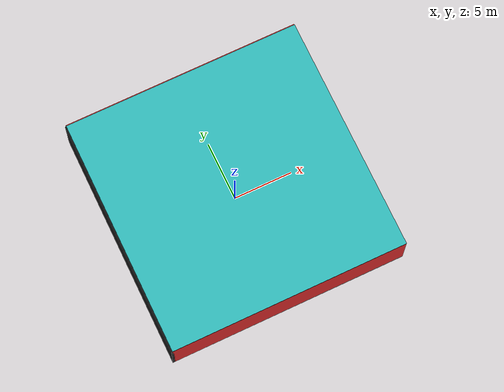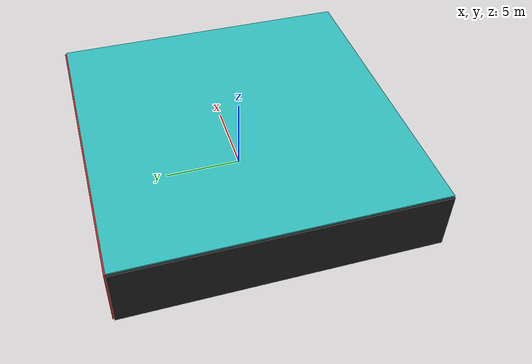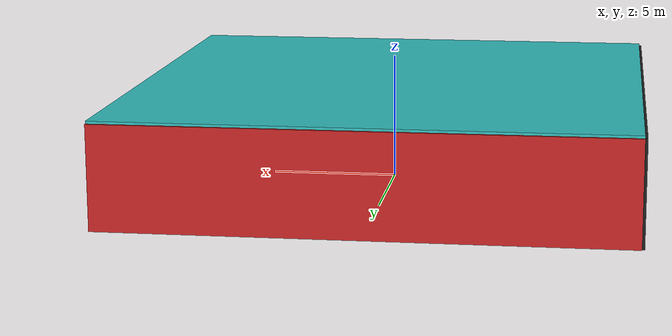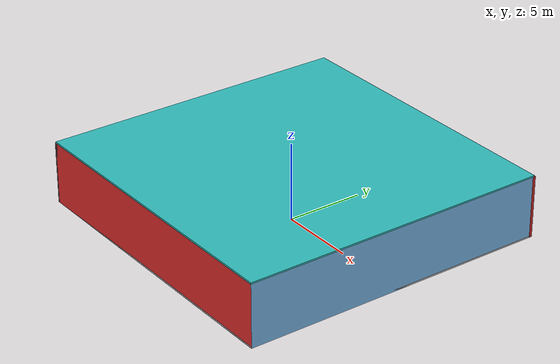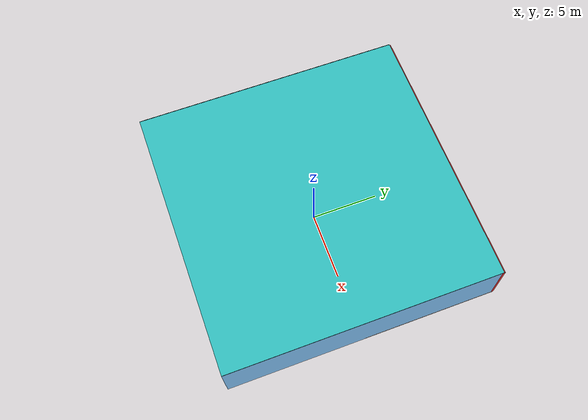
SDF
<sdf version="1.4">
 <world name="default">
  <physics type="ode">
   <max_step_size>0.001</max_step_size>
   <real_time_factor>1</real_time_factor>
   <real_time_update_rate>1000</real_time_update_rate>
   <gravity>0 0 -9.8</gravity>
  </physics>
  <scene><ambient>0.4 0.4 0.4 1</ambient><background>0.7 0.7 0.7 1</background><shadows>1</shadows></scene>
  <model name="Surrounding">
   <static>1</static>
   <link name="Ceiling">
    <collision name="Ceiling_Collision"><geometry><box><size>20 20 0.1</size></box></geometry></collision>
    <visual name="Ceiling_Visual">
     <geometry><box><size>20 20 0.1</size></box></geometry>
     <material>
      <script>
       <uri>file://media/materials/scripts/gazebo.material</uri>
       <name>Gazebo/TurquoiseGlowOutline</name>
      </script>
     </material>
    </visual>
    <pose>0 0 4.05 0 0 0</pose>
   </link>
   <link name="Wall_South">
    <collision name="Wall_South_Collision">
     <geometry><box><size>20 0 4</size></box></geometry>
     <pose>0 0 2 0 -0 0</pose>
    </collision>
    <visual name="Wall_South_Visual">
     <pose>0 0 2 0 -0 0</pose>
     <geometry><box><size>20 0 4</size></box></geometry>
     <material>
      <script><uri>file://media/materials/scripts/gazebo.material</uri><name>Gazebo/Red</name></script>
     </material>
    </visual>
    <velocity_decay><linear>0</linear><angular>0</angular></velocity_decay>
    <pose>0 -10 0 0 -0 0</pose>
   </link>
   <link name="Wall_East">
    <collision name="Wall_21_Collision">
     <geometry><box><size>20 0 4</size></box></geometry>
     <pose>0 0 2 0 -0 0</pose>
    </collision>
    <visual name="Wall_21_Visual">
     <pose>0 0 2 0 -0 0</pose>
     <geometry><box><size>20 0 4</size></box></geometry>
     <material>
      <script><uri>file://media/materials/scripts/gazebo.material</uri><name>Gazebo/SkyBlue</name></script>
     </material>
    </visual>
    <velocity_decay><linear>0</linear><angular>0</angular></velocity_decay>
    <pose>10 0 0 0 -0 1.5708</pose>
   </link>
   <link name="Wall_North">
    <collision name="Wall_22_Collision">
     <geometry><box><size>20 0.2 4</size></box></geometry>
     <pose>0 0 2 0 -0 0</pose>
    </collision>
    <visual name="Wall_22_Visual">
     <pose>0 0 2 0 -0 0</pose>
     <geometry><box><size>20 0.2 4</size></box></geometry>
     <material>
      <script><uri>file://media/materials/scripts/gazebo.material</uri><name>Gazebo/RedBright</name></script>
     </material>
    </visual>
    <velocity_decay><linear>0</linear><angular>0</angular></velocity_decay>
    <pose>0 10 0 0 -0 0</pose>
   </link>
   <link name="Wall_West">
    <collision name="Wall_23_Collision">
     <geometry><box><size>20 0.2 4</size></box></geometry>
     <pose>0 0 2 0 -0 0</pose>
    </collision>
    <visual name="Wall_23_Visual">
     <pose>0 0 2 0 -0 0</pose>
     <geometry><box><size>20 0.2 4</size></box></geometry>
     <material>
      <script><uri>file://media/materials/scripts/gazebo.material</uri><name>Gazebo/FlatBlack</name></script>
     </material>
    </visual>
    <velocity_decay><linear>0</linear><angular>0</angular></velocity_decay>
    <pose>-10 0 0 0 0 -1.5708</pose>
   </link>
   <link name="Ground_link">
    <collision name="collision">
     <pose>0 0 .05 0 -0 0</pose>
     <geometry><box><size>20 20 0.1</size></box></geometry>
    </collision>
    <visual name="visual">
     <pose>0 0 .05 0 -0 0</pose>
     <geometry><box><size>20 20 0.1</size></box></geometry>
     <material>
      <script><uri>file://media/materials/scripts/gazebo.material</uri><name>Gazebo/LightOn</name></script>
     </material>
    </visual>
   </link>
   <static>1</static>
  </model>
  <spherical_coordinates>
   <surface_model>EARTH_WGS84</surface_model>
   <latitude_deg>0</latitude_deg>
   <longitude_deg>0</longitude_deg>
   <elevation>0</elevation>
   <heading_deg>0</heading_deg>
  </spherical_coordinates>
  <light name="lightball_0" type="diffuse">
   <diffuse>0.8 0.8 0.8 1</diffuse>
   <specular>0.2 0.2 0.2 1</specular>
   <attenuation>
    <range>100</range>
    <constant>0.7</constant>
    <linear>0.01</linear>
    <quadratic>0.001</quadratic>
   </attenuation>
   <direction>-0.5 0.1 -0.9</direction>
   <pose>-9.90932003761 0.388451832266 2.46919575558 0 0 0</pose>
  </light>
  <light name="lightball_1" type="diffuse">
   <diffuse>0.8 0.8 0.8 1</diffuse>
   <specular>0.2 0.2 0.2 1</specular>
   <attenuation>
    <range>100</range>
    <constant>0.7</constant>
    <linear>0.01</linear>
    <quadratic>0.001</quadratic>
   </attenuation>
   <direction>-0.5 0.1 -0.9</direction>
   <pose>-0.0500228701836 8.90844084666 2.40404083385 0 0 0</pose>
  </light>
  <light name="lightball_2" type="diffuse">
   <diffuse>0.8 0.8 0.8 1</diffuse>
   <specular>0.2 0.2 0.2 1</specular>
   <attenuation>
    <range>100</range>
    <constant>0.7</constant>
    <linear>0.01</linear>
    <quadratic>0.001</quadratic>
   </attenuation>
   <direction>-0.5 0.1 -0.9</direction>
   <pose>-6.39348969028 3.79322248522 1.97366972324 0 0 0</pose>
  </light>
  <light name="lightball_3" type="diffuse">
   <diffuse>0.8 0.8 0.8 1</diffuse>
   <specular>0.2 0.2 0.2 1</specular>
   <attenuation>
    <range>100</range>
    <constant>0.7</constant>
    <linear>0.01</linear>
    <quadratic>0.001</quadratic>
   </attenuation>
   <direction>-0.5 0.1 -0.9</direction>
   <pose>-4.55366804951 -8.42632914048 0.56191991549 0 0 0</pose>
  </light>
  <light name="lightball_4" type="diffuse">
   <diffuse>0.8 0.8 0.8 1</diffuse>
   <specular>0.2 0.2 0.2 1</specular>
   <attenuation>
    <range>100</range>
    <constant>0.7</constant>
    <linear>0.01</linear>
    <quadratic>0.001</quadratic>
   </attenuation>
   <direction>-0.5 0.1 -0.9</direction>
   <pose>-2.50709832515 -3.47379130054 2.33281976077 0 0 0</pose>
  </light>
  <include>
   <uri>model://construction_cone</uri>
   <pose>-4.42889412233 -4.06836237747 0 0 0 2.69267448375</pose>
  </include>
  <include>
   <uri>model://robocup_3Dsim_goal</uri>
   <pose>-4.83879872879 5.26234790324 0 0 0 1.81212272317</pose>
  </include>
  <include><uri>model://cabinet</uri><pose>7.5546156264 -1.07268886213 0 0 0 1.47347700031</pose></include>
 </world>
</sdf>

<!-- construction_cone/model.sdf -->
<sdf version="1.5">
  <model name="Construction Cone">
    <link name="link">
      <collision name="collision">
        <geometry>
          <mesh>
            <scale>10 10 10</scale>
            <uri>file://isr-testbed/construction_cone/meshes/construction_cone.dae</uri>
          </mesh>
        </geometry>
      </collision>
      <visual name="visual">
        <geometry>
          <mesh>
            <scale>10 10 10</scale>
            <uri>file://isr-testbed/construction_cone/meshes/construction_cone.dae</uri>
          </mesh>
        </geometry>
      </visual>
    </link>
  </model>
</sdf>

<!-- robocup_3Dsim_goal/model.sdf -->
<sdf version="1.5">
  <model name="robocup_3d_goal">
    <static>true</static>
    <link name="left_post">
      <pose>0 1.05 0.45 0 0 0</pose>
      <collision name="collision">
        <geometry>
          <cylinder>
            <radius>0.05</radius>
            <length>0.9</length>
          </cylinder>
        </geometry>
      </collision>
      <visual name="visual">
        <geometry>
          <cylinder>
            <radius>0.05</radius>
            <length>0.9</length>
          </cylinder>
        </geometry>
        <material>
          <script>
            <uri>file://media/materials/scripts/gazebo.material</uri>
            <name>Gazebo/ZincYellow</name>
          </script>
        </material>
      </visual>
    </link>
    <link name="left_support_horiz_lower">
      <pose>0.30 1.05 0.01 0 0 0</pose>
      <collision name="collision">
        <geometry>
          <box>
            <size>0.50 0.02 0.02</size>
          </box>
        </geometry>
      </collision>
      <visual name="visual">
        <geometry>
          <box>
            <size>0.50 0.02 0.02</size>
          </box>
        </geometry>
        <material>
          <script>
            <uri>file://media/materials/scripts/gazebo.material</uri>
            <name>Gazebo/White</name>
          </script>
        </material>
      </visual>
    </link>
    <link name="left_support_horiz_upper">
      <pose>0.30 1.05 0.79 0 0 0</pose>
      <collision name="collision">
        <geometry>
          <box>
            <size>0.50 0.02 0.02</size>
          </box>
        </geometry>
      </collision>
      <visual name="visual">
        <geometry>
          <box>
            <size>0.50 0.02 0.02</size>
          </box>
        </geometry>
        <material>
          <script>
            <uri>file://media/materials/scripts/gazebo.material</uri>
            <name>Gazebo/White</name>
          </script>
        </material>
      </visual>
    </link>
    <link name="left_support_vertical">
      <pose>0.56 1.05 0.4 0 1.5708 0</pose>
      <collision name="collision">
        <geometry>
          <box>
            <size>0.80 0.02 0.02</size>
          </box>
        </geometry>
      </collision>
      <visual name="visual">
        <geometry>
          <box>
            <size>0.80 0.02 0.02</size>
          </box>
        </geometry>
        <material>
          <script>
            <uri>file://media/materials/scripts/gazebo.material</uri>
            <name>Gazebo/White</name>
          </script>
        </material>
      </visual>
    </link>
    <link name="right_support_horiz_lower">
      <pose>0.30 -1.05 0.01 0 0 0</pose>
      <collision name="collision">
        <geometry>
          <box>
            <size>0.50 0.02 0.02</size>
          </box>
        </geometry>
      </collision>
      <visual name="visual">
        <geometry>
          <box>
            <size>0.50 0.02 0.02</size>
          </box>
        </geometry>
        <material>
          <script>
            <uri>file://media/materials/scripts/gazebo.material</uri>
            <name>Gazebo/White</name>
          </script>
        </material>
      </visual>
    </link>
    <link name="right_support_horiz_upper">
      <pose>0.30 -1.05 0.79 0 0 0</pose>
      <collision name="collision">
        <geometry>
          <box>
            <size>0.50 0.02 0.02</size>
          </box>
        </geometry>
      </collision>
      <visual name="visual">
        <geometry>
          <box>
            <size>0.50 0.02 0.02</size>
          </box>
        </geometry>
        <material>
          <script>
            <uri>file://media/materials/scripts/gazebo.material</uri>
            <name>Gazebo/White</name>
          </script>
        </material>
      </visual>
    </link>
    <link name="right_support_vertical">
      <pose>0.56 -1.05 0.4 0 1.5708 0</pose>
      <collision name="collision">
        <geometry>
          <box>
            <size>0.80 0.02 0.02</size>
          </box>
        </geometry>
      </collision>
      <visual name="visual">
        <geometry>
          <box>
            <size>0.80 0.02 0.02</size>
          </box>
        </geometry>
        <material>
          <script>
            <uri>file://media/materials/scripts/gazebo.material</uri>
            <name>Gazebo/White</name>
          </script>
        </material>
      </visual>
    </link>
    <link name="center_support_horiz_lower">
      <pose>0.56 0 0.01 0 1.5708 0</pose>
      <collision name="collision">
        <geometry>
          <box>
            <size>0.02 2.08 0.02</size>
          </box>
        </geometry>
      </collision>
      <visual name="visual">
        <geometry>
          <box>
            <size>0.02 2.08 0.02</size>
          </box>
        </geometry>
        <material>
          <script>
            <uri>file://media/materials/scripts/gazebo.material</uri>
            <name>Gazebo/White</name>
          </script>
        </material>
      </visual>
    </link>
    <link name="center_support_horiz_upper">
      <pose>0.56 0 0.79 0 1.5708 0</pose>
      <collision name="collision">
        <geometry>
          <box>
            <size>0.02 2.08 0.02</size>
          </box>
        </geometry>
      </collision>
      <visual name="visual">
        <geometry>
          <box>
            <size>0.02 2.08 0.02</size>
          </box>
        </geometry>
        <material>
          <script>
            <uri>file://media/materials/scripts/gazebo.material</uri>
            <name>Gazebo/White</name>
          </script>
        </material>
      </visual>
    </link>
    <link name="right_post">
      <pose>0 -1.05 0.45 0 0 0</pose>
      <collision name="collision">
        <geometry>
          <cylinder>
            <radius>0.05</radius>
            <length>0.9</length>
          </cylinder>
        </geometry>
      </collision>
      <visual name="visual">
        <geometry>
          <cylinder>
            <radius>0.05</radius>
            <length>0.9</length>
          </cylinder>
        </geometry>
        <material>
          <script>
            <uri>file://media/materials/scripts/gazebo.material</uri>
            <name>Gazebo/ZincYellow</name>
          </script>
        </material>
      </visual>
    </link>
    <link name="crossbar">
      <pose>0 0 0.85 1.57 1.57 0</pose>
      <collision name="collision">
        <geometry>
          <cylinder>
            <radius>0.05</radius>
            <length>2.0</length>
          </cylinder>
        </geometry>
      </collision>
      <visual name="visual">
        <geometry>
          <cylinder>
            <radius>0.05</radius>
            <length>2.0</length>
          </cylinder>
        </geometry>
        <material>
          <script>
            <uri>file://media/materials/scripts/gazebo.material</uri>
            <name>Gazebo/ZincYellow</name>
          </script>
        </material>
      </visual>
    </link>
    <link name="center_net">
      <pose>0.56 0 0.40 0 0 0</pose>
      <collision name="collision">
        <geometry>
          <box>
            <size>0.01 2.1 0.80</size>
          </box>
        </geometry>
      </collision>
      <visual name="visual">
        <geometry>
          <box>
            <size>0.01 2.1 0.80</size>
          </box>
        </geometry>
        <material>
          <script>
            <uri>model://../model_source/models/robocup09_spl_field/materials/scripts/</uri>
            <uri>model://../model_source/models/robocup09_spl_field/materials/textures/</uri>
            <name>RoboCup/Net</name>
          </script>
        </material>
      </visual>
    </link>
    <link name="left_net">
      <pose>0.30 1.05 0.40 0 0 0</pose>
      <collision name="collision">
        <geometry>
          <box>
            <size>0.50 0.01 0.76</size>
          </box>
        </geometry>
      </collision>
      <visual name="visual">
        <geometry>
          <box>
            <size>0.50 0.01 0.76</size>
          </box>
        </geometry>
        <material>
          <script>
            <uri>model://../model_source/models/robocup09_spl_field/materials/scripts/</uri>
            <uri>model://../model_source/models/robocup09_spl_field/materials/textures/</uri>
            <name>RoboCup/Net</name>
          </script>
        </material>
      </visual>
    </link>
    <link name="right_net">
      <pose>0.30 -1.05 0.40 0 0 0</pose>
      <collision name="collision">
        <geometry>
          <box>
            <size>0.50 0.01 0.76</size>
          </box>
        </geometry>
      </collision>
      <visual name="visual">
        <geometry>
          <box>
            <size>0.50 0.01 0.76</size>
          </box>
        </geometry>
        <material>
          <script>
            <uri>model://../model_source/models/robocup09_spl_field/materials/scripts/</uri>
            <uri>model://../model_source/models/robocup09_spl_field/materials/textures/</uri>
            <name>RoboCup/Net</name>
          </script>
        </material>
      </visual>
    </link>
  </model>
</sdf>

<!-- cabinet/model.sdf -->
<sdf version="1.5">
  <model name="cabinet">
    <static>true</static>
    <link name="cabinet_bottom_plate">
      <inertial>
        <pose>0 0 -1 0 0 0</pose>
        <inertia>
          <ixx>2.050000</ixx>
          <ixy>0</ixy>
          <ixz>0</ixz>
          <iyy>2.050000</iyy>
          <iyz>0</iyz>
          <izz>2.050000</izz>
        </inertia>
        <mass>25.000000</mass>
      </inertial>
      <collision name="cabinet_bottom_plate_geom">
        <pose>0 0 0.010000 0 0 0</pose>
        <geometry>
          <box>
            <size>0.450000 0.450000 0.020000</size>
          </box>
        </geometry>
      </collision>
      <visual name="cabinet_bottom_plate_geom_visual">
        <pose>0 0 0.010000 0 0 0</pose>
        <geometry>
          <box>
            <size>0.450000 0.450000 0.020000</size>
          </box>
        </geometry>
        <material>
          <script>
            <uri>model://media/materials/scripts/gazebo.material</uri>
            <name>Gazebo/Wood</name>
          </script>
        </material>
      </visual>
      <collision name="cabinet_bottom_plate_geom_cabinet_back_plate">
        <pose>0.235000 0 0.510000 0 0 0</pose>
        <geometry>
          <box>
            <size>0.020000 0.450000 1.020000</size>
          </box>
        </geometry>
      </collision>
      <visual name="cabinet_bottom_plate_geom_cabinet_back_plate_visual">
        <pose>0.235000 0 0.510000 0 0 0</pose>
        <geometry>
          <box>
            <size>0.020000 0.450000 1.020000</size>
          </box>
        </geometry>
        <material>
          <script>
            <uri>model://media/materials/scripts/gazebo.material</uri>
            <name>Gazebo/Wood</name>
          </script>
        </material>
      </visual>
      <collision name="cabinet_bottom_plate_geom_cabinet_left_plate">
        <pose>0 0.235000 0.510000 0 0 0</pose>
        <geometry>
          <box>
            <size>0.450000 0.020000 1.020000</size>
          </box>
        </geometry>
      </collision>
      <visual name="cabinet_bottom_plate_geom_cabinet_left_plate_visual">
        <pose>0 0.235000 0.510000 0 0 0</pose>
        <geometry>
          <box>
            <size>0.450000 0.020000 1.020000</size>
          </box>
        </geometry>
        <material>
          <script>
            <uri>model://media/materials/scripts/gazebo.material</uri>
            <name>Gazebo/Wood</name>
          </script>
        </material>
      </visual>
      <collision name="cabinet_bottom_plate_geom_cabinet_middle_plate">
        <pose>0 0 0.510000 0 0 0</pose>
        <geometry>
          <box>
            <size>0.450000 0.450000 0.020000</size>
          </box>
        </geometry>
      </collision>
      <visual name="cabinet_bottom_plate_geom_cabinet_middle_plate_visual">
        <pose>0 0 0.510000 0 0 0</pose>
        <geometry>
          <box>
            <size>0.450000 0.450000 0.020000</size>
          </box>
        </geometry>
        <material>
          <script>
            <uri>model://media/materials/scripts/gazebo.material</uri>
            <name>Gazebo/Wood</name>
          </script>
        </material>
      </visual>
      <collision name="cabinet_bottom_plate_geom_cabinet_right_plate">
        <pose>0 -0.235000 0.510000 0 0 0</pose>
        <geometry>
          <box>
            <size>0.450000 0.020000 1.020000</size>
          </box>
        </geometry>
      </collision>
      <visual name="cabinet_bottom_plate_geom_cabinet_right_plate_visual">
        <pose>0 -0.235000 0.510000 0 0 0</pose>
        <geometry>
          <box>
            <size>0.450000 0.020000 1.020000</size>
          </box>
        </geometry>
        <material>
          <script>
            <uri>model://media/materials/scripts/gazebo.material</uri>
            <name>Gazebo/Wood</name>
          </script>
        </material>
      </visual>
      <collision name="cabinet_bottom_plate_geom_cabinet_top_plate">
        <pose>0 0 1.010000 0 0 0</pose>
        <geometry>
          <box>
            <size>0.450000 0.450000 0.020000</size>
          </box>
        </geometry>
      </collision>
      <visual name="cabinet_bottom_plate_geom_cabinet_top_plate_visual">
        <pose>0 0 1.010000 0 0 0</pose>
        <geometry>
          <box>
            <size>0.450000 0.450000 0.020000</size>
          </box>
        </geometry>
        <material>
          <script>
            <uri>model://media/materials/scripts/gazebo.material</uri>
            <name>Gazebo/Wood</name>
          </script>
        </material>
      </visual>
    </link>
  </model>
</sdf>
